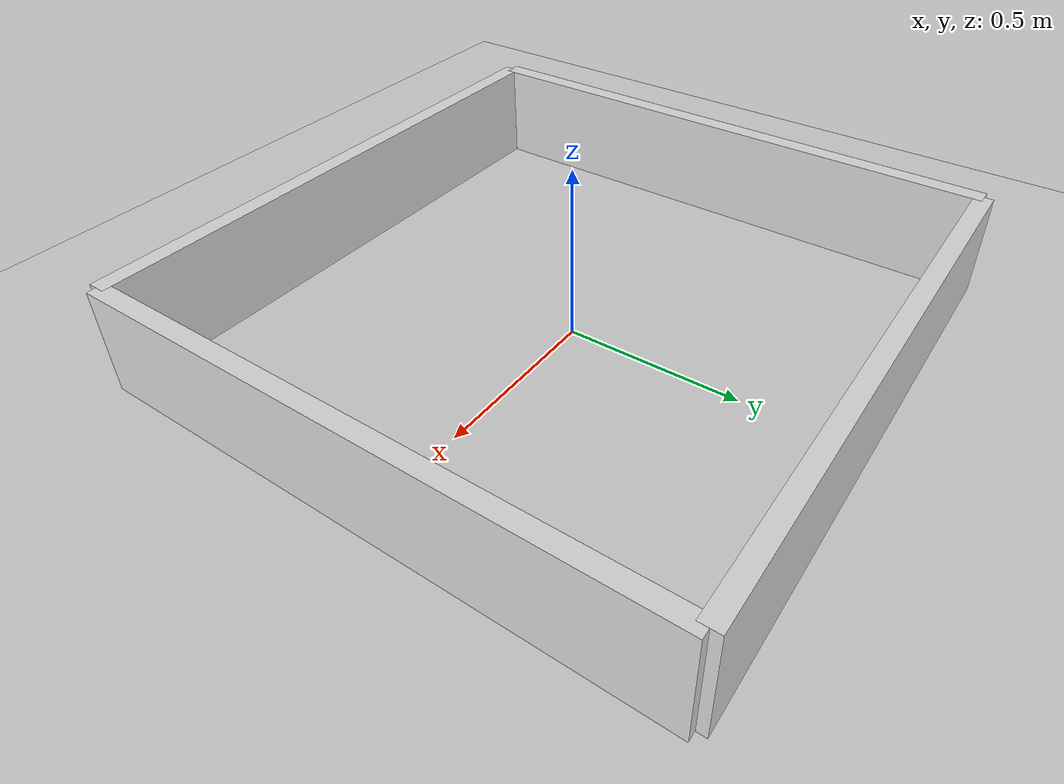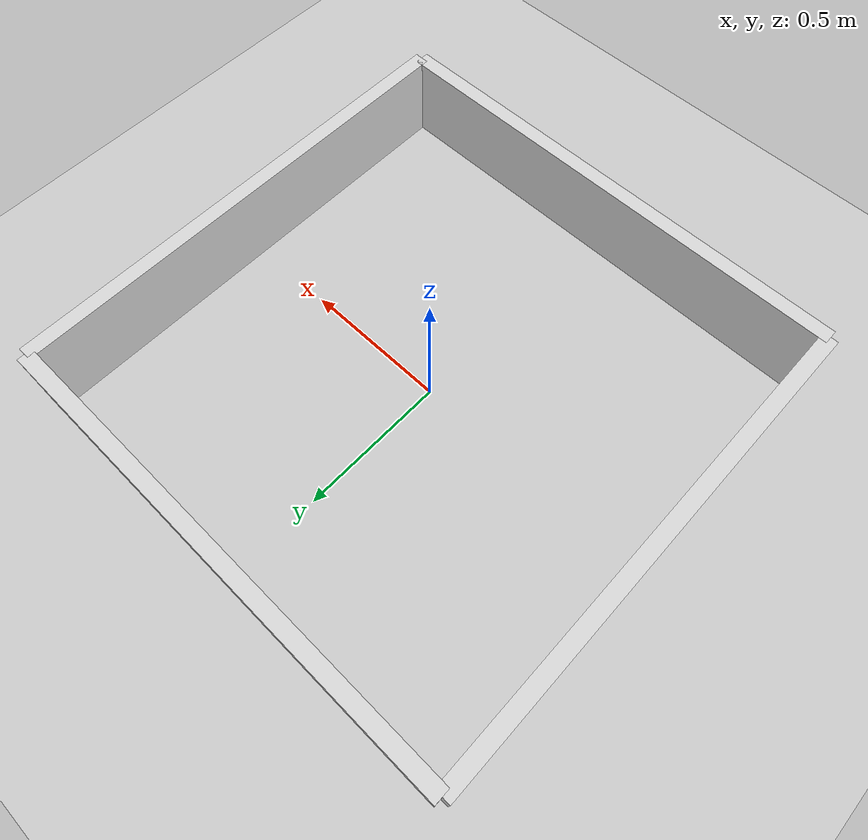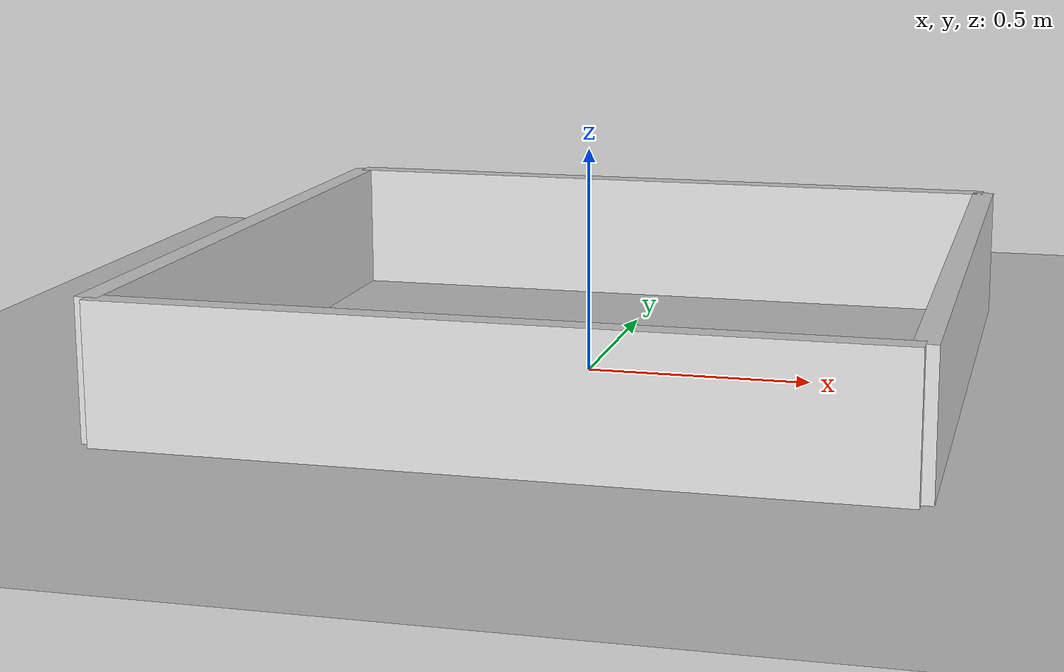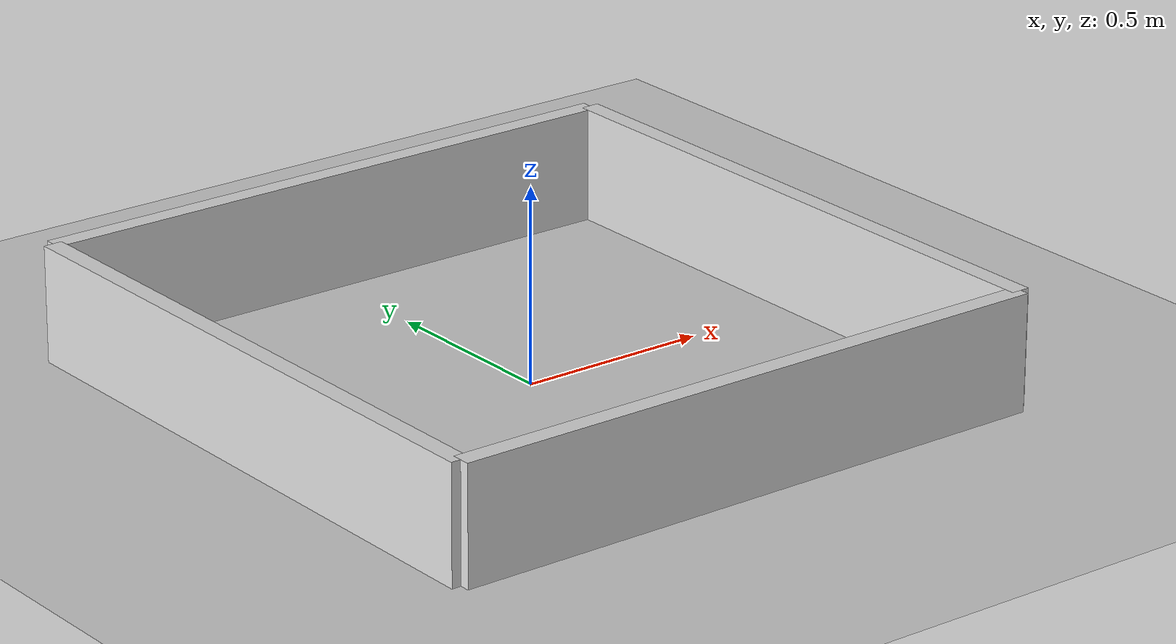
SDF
<?xml version="1.0"?>
<sdf version="1.6">
  <world name="imdl_arena_task1">
    <scene><shadows>false</shadows></scene>
    <include>
      <uri>model://ground_plane</uri>
    </include>
    <include>
      <uri>model://sun</uri>
    </include>

    <physics name="default_physics" type="ode">
      <max_step_size>0.001</max_step_size>
      <real_time_update_rate>1000</real_time_update_rate>
    </physics>

    <model name="arena_walls">
      <static>true</static>
      <link name="walls">
        <visual name="north_wall_visual"><pose>0 0.815 0.15 0 0 0</pose><geometry><box><size>1.63 0.05 0.30</size></box></geometry><material><ambient>0.85 0.85 0.85 1</ambient><diffuse>0.85 0.85 0.85 1</diffuse></material></visual>
        <collision name="north_wall_collision"><pose>0 0.815 0.15 0 0 0</pose><geometry><box><size>1.63 0.05 0.30</size></box></geometry></collision>
        <visual name="south_wall_visual"><pose>0 -0.815 0.15 0 0 0</pose><geometry><box><size>1.63 0.05 0.30</size></box></geometry><material><ambient>0.85 0.85 0.85 1</ambient><diffuse>0.85 0.85 0.85 1</diffuse></material></visual>
        <collision name="south_wall_collision"><pose>0 -0.815 0.15 0 0 0</pose><geometry><box><size>1.63 0.05 0.30</size></box></geometry></collision>
        <visual name="east_wall_visual"><pose>0.815 0 0.15 0 0 0</pose><geometry><box><size>0.05 1.63 0.30</size></box></geometry><material><ambient>0.85 0.85 0.85 1</ambient><diffuse>0.85 0.85 0.85 1</diffuse></material></visual>
        <collision name="east_wall_collision"><pose>0.815 0 0.15 0 0 0</pose><geometry><box><size>0.05 1.63 0.30</size></box></geometry></collision>
        <visual name="west_wall_visual"><pose>-0.815 0 0.15 0 0 0</pose><geometry><box><size>0.05 1.63 0.30</size></box></geometry><material><ambient>0.85 0.85 0.85 1</ambient><diffuse>0.85 0.85 0.85 1</diffuse></material></visual>
        <collision name="west_wall_collision"><pose>-0.815 0 0.15 0 0 0</pose><geometry><box><size>0.05 1.63 0.30</size></box></geometry></collision>
      </link>
    </model>
  </world>
</sdf>
